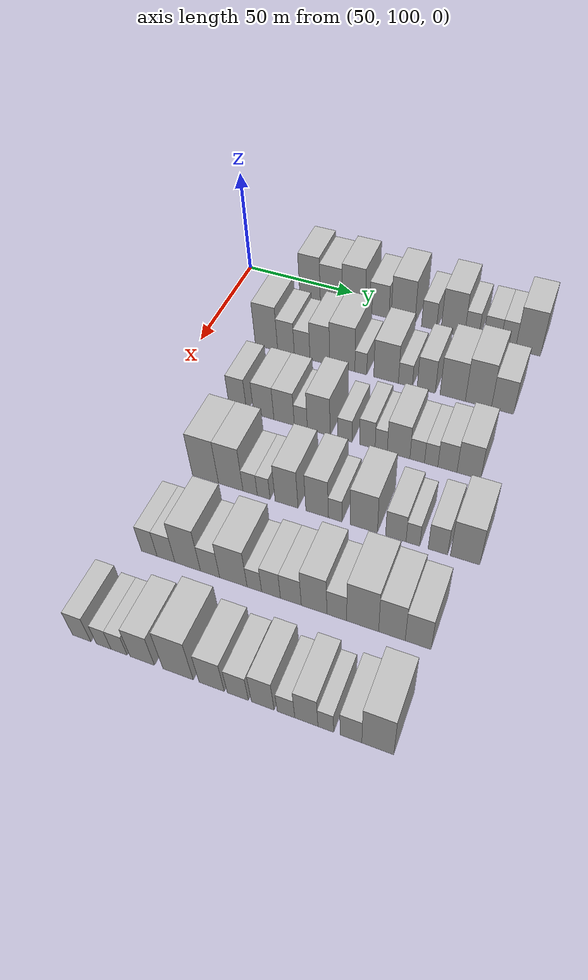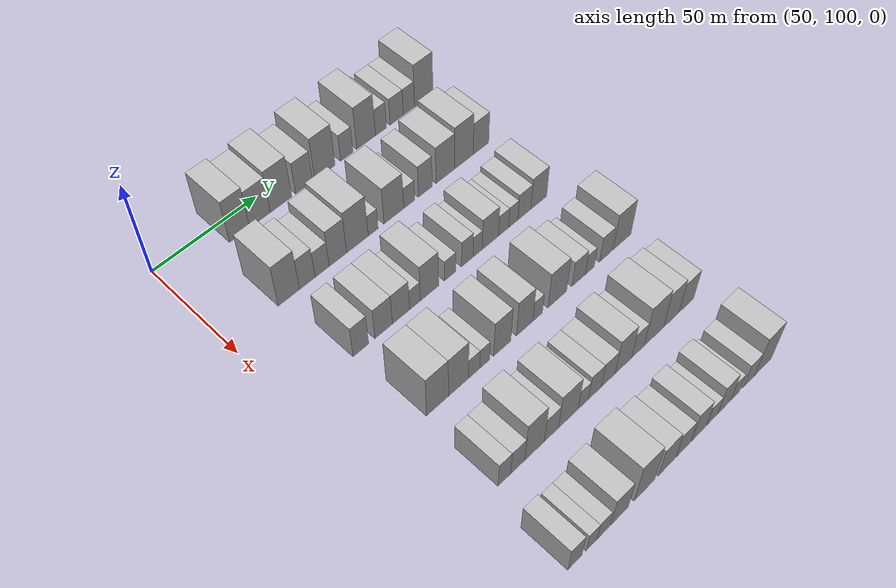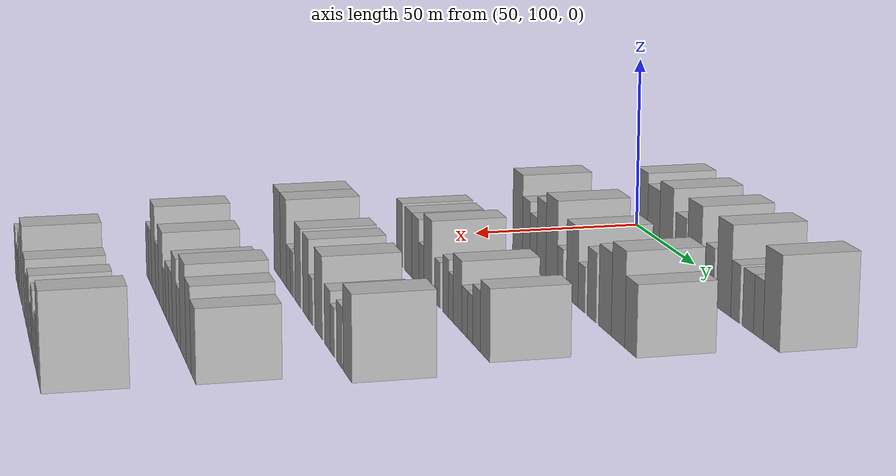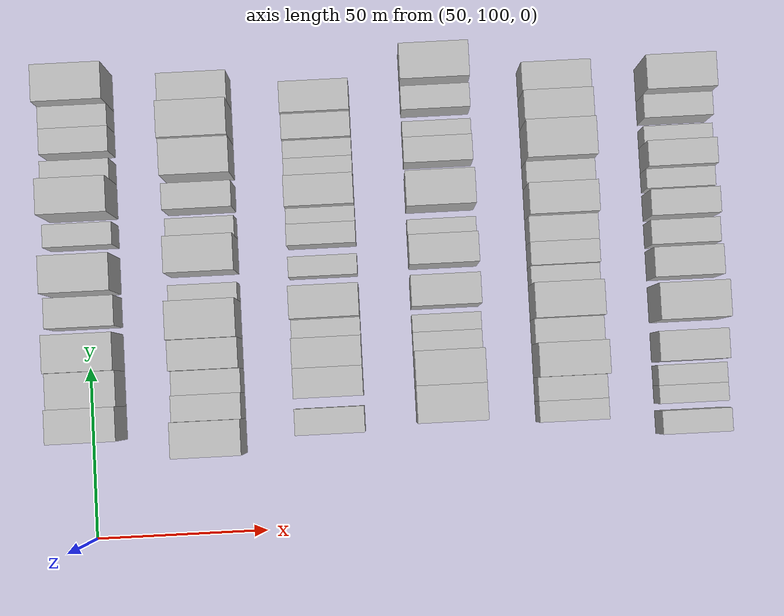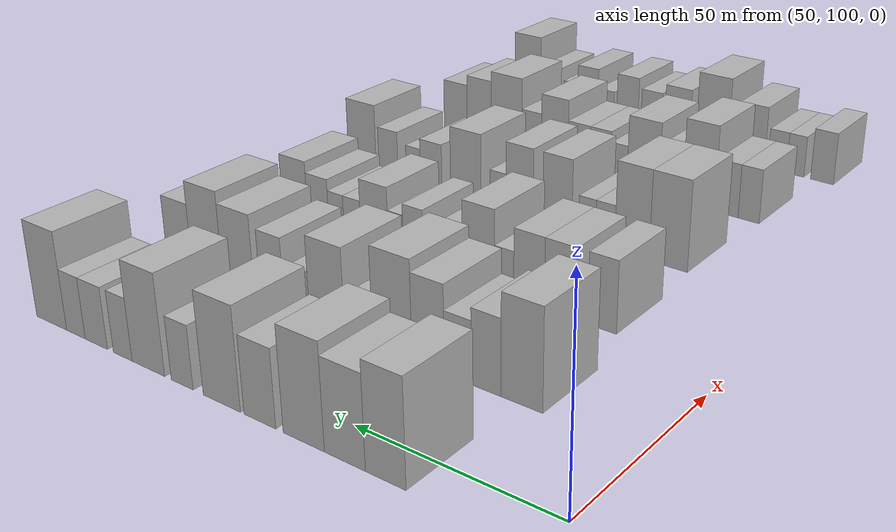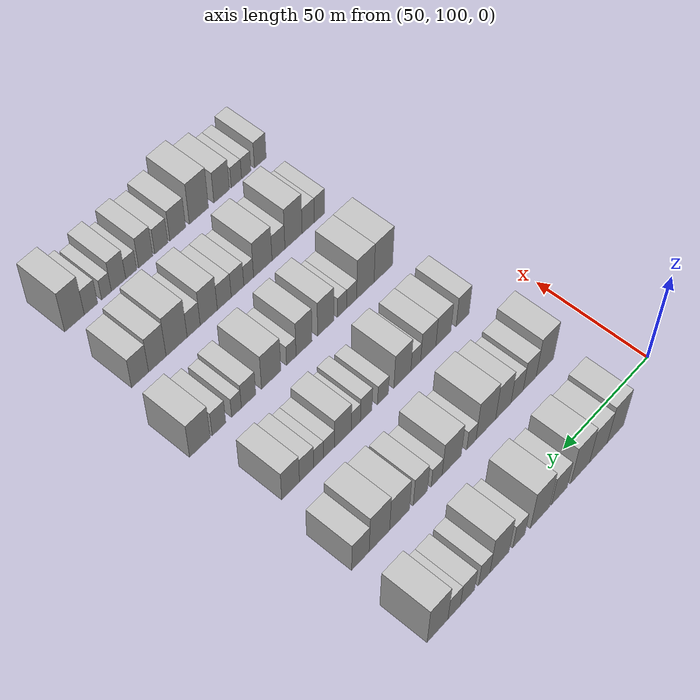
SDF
<sdf version="1.6">
 <world name="default">
  <model name="building_79">
   <static>1</static>
   <pose>50.0000 133.5332 0 0.000000 0.000000 0.000000</pose>
   <link name="link">
    <pose>0 0 12.00 0 0 0</pose>
    <collision name="collision"><geometry><box><size>20.0000 9.7597 24.0000</size></box></geometry></collision>
    <visual name="visual">
     <cast_shadows>0</cast_shadows>
     <geometry><box><size>20.0000 9.7597 24.0000</size></box></geometry>
     <material>
      <script>
       <uri>model://HANNAS_wall/materials/scripts</uri>
       <uri>model://HANNAS_wall/materials/textures</uri>
       <name>vrc/HANNAS_wall</name>
      </script>
     </material>
    </visual>
   </link>
  </model>
  <model name="building_80">
   <static>1</static>
   <pose>50.0000 143.5426 0 0.000000 0.000000 0.000000</pose>
   <link name="link">
    <pose>0 0 10.50 0 0 0</pose>
    <collision name="collision"><geometry><box><size>20.0000 10.2590 21.0000</size></box></geometry></collision>
    <visual name="visual">
     <cast_shadows>0</cast_shadows>
     <geometry><box><size>20.0000 10.2590 21.0000</size></box></geometry>
     <material>
      <script>
       <uri>model://HANNAS_wall/materials/scripts</uri>
       <uri>model://HANNAS_wall/materials/textures</uri>
       <name>vrc/HANNAS_wall</name>
      </script>
     </material>
    </visual>
   </link>
  </model>
  <model name="building_81">
   <static>1</static>
   <pose>50.0000 154.0727 0 0.000000 0.000000 0.000000</pose>
   <link name="link">
    <pose>0 0 12.00 0 0 0</pose>
    <collision name="collision"><geometry><box><size>20.0000 10.8012 24.0000</size></box></geometry></collision>
    <visual name="visual">
     <cast_shadows>0</cast_shadows>
     <geometry><box><size>20.0000 10.8012 24.0000</size></box></geometry>
     <material>
      <script>
       <uri>model://HANNAS_wall/materials/scripts</uri>
       <uri>model://HANNAS_wall/materials/textures</uri>
       <name>vrc/HANNAS_wall</name>
      </script>
     </material>
    </visual>
   </link>
  </model>
  <model name="building_82">
   <static>1</static>
   <pose>50.0000 165.8574 0 0.000000 0.000000 0.000000</pose>
   <link name="link">
    <pose>0 0 9.00 0 0 0</pose>
    <collision name="collision"><geometry><box><size>20.0000 8.7682 18.0000</size></box></geometry></collision>
    <visual name="visual">
     <cast_shadows>0</cast_shadows>
     <geometry><box><size>20.0000 8.7682 18.0000</size></box></geometry>
     <material>
      <script>
       <uri>model://HANNAS_wall/materials/scripts</uri>
       <uri>model://HANNAS_wall/materials/textures</uri>
       <name>vrc/HANNAS_wall</name>
      </script>
     </material>
    </visual>
   </link>
  </model>
  <model name="building_83">
   <static>1</static>
   <pose>50.0000 176.5997 0 0.000000 0.000000 0.000000</pose>
   <link name="link">
    <pose>0 0 12.00 0 0 0</pose>
    <collision name="collision"><geometry><box><size>20.0000 10.7165 24.0000</size></box></geometry></collision>
    <visual name="visual">
     <cast_shadows>0</cast_shadows>
     <geometry><box><size>20.0000 10.7165 24.0000</size></box></geometry>
     <material>
      <script>
       <uri>model://HANNAS_wall/materials/scripts</uri>
       <uri>model://HANNAS_wall/materials/textures</uri>
       <name>vrc/HANNAS_wall</name>
      </script>
     </material>
    </visual>
   </link>
  </model>
  <model name="building_84">
   <static>1</static>
   <pose>50.0000 188.2703 0 0.000000 0.000000 0.000000</pose>
   <link name="link">
    <pose>0 0 7.50 0 0 0</pose>
    <collision name="collision"><geometry><box><size>20.0000 6.6248 15.0000</size></box></geometry></collision>
    <visual name="visual">
     <cast_shadows>0</cast_shadows>
     <geometry><box><size>20.0000 6.6248 15.0000</size></box></geometry>
     <material>
      <script>
       <uri>model://HANNAS_wall/materials/scripts</uri>
       <uri>model://HANNAS_wall/materials/textures</uri>
       <name>vrc/HANNAS_wall</name>
      </script>
     </material>
    </visual>
   </link>
  </model>
  <model name="building_85">
   <static>1</static>
   <pose>50.0000 198.7261 0 0.000000 0.000000 0.000000</pose>
   <link name="link">
    <pose>0 0 12.00 0 0 0</pose>
    <collision name="collision"><geometry><box><size>20.0000 10.2867 24.0000</size></box></geometry></collision>
    <visual name="visual">
     <cast_shadows>0</cast_shadows>
     <geometry><box><size>20.0000 10.2867 24.0000</size></box></geometry>
     <material>
      <script>
       <uri>model://HANNAS_wall/materials/scripts</uri>
       <uri>model://HANNAS_wall/materials/textures</uri>
       <name>vrc/HANNAS_wall</name>
      </script>
     </material>
    </visual>
   </link>
  </model>
  <model name="building_86">
   <static>1</static>
   <pose>50.0000 206.9039 0 0.000000 0.000000 0.000000</pose>
   <link name="link">
    <pose>0 0 7.50 0 0 0</pose>
    <collision name="collision"><geometry><box><size>20.0000 6.0690 15.0000</size></box></geometry></collision>
    <visual name="visual">
     <cast_shadows>0</cast_shadows>
     <geometry><box><size>20.0000 6.0690 15.0000</size></box></geometry>
     <material>
      <script>
       <uri>model://HANNAS_wall/materials/scripts</uri>
       <uri>model://HANNAS_wall/materials/textures</uri>
       <name>vrc/HANNAS_wall</name>
      </script>
     </material>
    </visual>
   </link>
  </model>
  <model name="building_87">
   <static>1</static>
   <pose>50.0000 215.6608 0 0.000000 0.000000 0.000000</pose>
   <link name="link">
    <pose>0 0 7.50 0 0 0</pose>
    <collision name="collision"><geometry><box><size>20.0000 7.4447 15.0000</size></box></geometry></collision>
    <visual name="visual">
     <cast_shadows>0</cast_shadows>
     <geometry><box><size>20.0000 7.4447 15.0000</size></box></geometry>
     <material>
      <script>
       <uri>model://HANNAS_wall/materials/scripts</uri>
       <uri>model://HANNAS_wall/materials/textures</uri>
       <name>vrc/HANNAS_wall</name>
      </script>
     </material>
    </visual>
   </link>
  </model>
  <model name="building_88">
   <static>1</static>
   <pose>50.0000 222.6018 0 0.000000 0.000000 0.000000</pose>
   <link name="link">
    <pose>0 0 7.50 0 0 0</pose>
    <collision name="collision"><geometry><box><size>20.0000 6.4373 15.0000</size></box></geometry></collision>
    <visual name="visual">
     <cast_shadows>0</cast_shadows>
     <geometry><box><size>20.0000 6.4373 15.0000</size></box></geometry>
     <material>
      <script>
       <uri>model://HANNAS_wall/materials/scripts</uri>
       <uri>model://HANNAS_wall/materials/textures</uri>
       <name>vrc/HANNAS_wall</name>
      </script>
     </material>
    </visual>
   </link>
  </model>
  <model name="building_89">
   <static>1</static>
   <pose>50.0000 231.1291 0 0.000000 0.000000 0.000000</pose>
   <link name="link">
    <pose>0 0 12.00 0 0 0</pose>
    <collision name="collision"><geometry><box><size>20.0000 10.6174 24.0000</size></box></geometry></collision>
    <visual name="visual">
     <cast_shadows>0</cast_shadows>
     <geometry><box><size>20.0000 10.6174 24.0000</size></box></geometry>
     <material>
      <script>
       <uri>model://HANNAS_wall/materials/scripts</uri>
       <uri>model://HANNAS_wall/materials/textures</uri>
       <name>vrc/HANNAS_wall</name>
      </script>
     </material>
    </visual>
   </link>
  </model>
  <model name="building_202">
   <static>1</static>
   <pose>85.0000 128.0198 0 0.000000 0.000000 0.000000</pose>
   <link name="link">
    <pose>0 0 12.00 0 0 0</pose>
    <collision name="collision"><geometry><box><size>20.0000 10.1819 24.0000</size></box></geometry></collision>
    <visual name="visual">
     <cast_shadows>0</cast_shadows>
     <geometry><box><size>20.0000 10.1819 24.0000</size></box></geometry>
     <material>
      <script>
       <uri>model://HANNAS_wall/materials/scripts</uri>
       <uri>model://HANNAS_wall/materials/textures</uri>
       <name>vrc/HANNAS_wall</name>
      </script>
     </material>
    </visual>
   </link>
  </model>
  <model name="building_203">
   <static>1</static>
   <pose>85.0000 136.8718 0 0.000000 0.000000 0.000000</pose>
   <link name="link">
    <pose>0 0 9.00 0 0 0</pose>
    <collision name="collision"><geometry><box><size>20.0000 7.5220 18.0000</size></box></geometry></collision>
    <visual name="visual">
     <cast_shadows>0</cast_shadows>
     <geometry><box><size>20.0000 7.5220 18.0000</size></box></geometry>
     <material>
      <script>
       <uri>model://HANNAS_wall/materials/scripts</uri>
       <uri>model://HANNAS_wall/materials/textures</uri>
       <name>vrc/HANNAS_wall</name>
      </script>
     </material>
    </visual>
   </link>
  </model>
  <model name="building_204">
   <static>1</static>
   <pose>85.0000 144.1322 0 0.000000 0.000000 0.000000</pose>
   <link name="link">
    <pose>0 0 7.50 0 0 0</pose>
    <collision name="collision"><geometry><box><size>20.0000 6.9989 15.0000</size></box></geometry></collision>
    <visual name="visual">
     <cast_shadows>0</cast_shadows>
     <geometry><box><size>20.0000 6.9989 15.0000</size></box></geometry>
     <material>
      <script>
       <uri>model://HANNAS_wall/materials/scripts</uri>
       <uri>model://HANNAS_wall/materials/textures</uri>
       <name>vrc/HANNAS_wall</name>
      </script>
     </material>
    </visual>
   </link>
  </model>
  <model name="building_205">
   <static>1</static>
   <pose>85.0000 151.9988 0 0.000000 0.000000 0.000000</pose>
   <link name="link">
    <pose>0 0 10.50 0 0 0</pose>
    <collision name="collision"><geometry><box><size>20.0000 8.7342 21.0000</size></box></geometry></collision>
    <visual name="visual">
     <cast_shadows>0</cast_shadows>
     <geometry><box><size>20.0000 8.7342 21.0000</size></box></geometry>
     <material>
      <script>
       <uri>model://HANNAS_wall/materials/scripts</uri>
       <uri>model://HANNAS_wall/materials/textures</uri>
       <name>vrc/HANNAS_wall</name>
      </script>
     </material>
    </visual>
   </link>
  </model>
  <model name="building_206">
   <static>1</static>
   <pose>85.0000 161.8592 0 0.000000 0.000000 0.000000</pose>
   <link name="link">
    <pose>0 0 12.00 0 0 0</pose>
    <collision name="collision"><geometry><box><size>20.0000 10.9867 24.0000</size></box></geometry></collision>
    <visual name="visual">
     <cast_shadows>0</cast_shadows>
     <geometry><box><size>20.0000 10.9867 24.0000</size></box></geometry>
     <material>
      <script>
       <uri>model://HANNAS_wall/materials/scripts</uri>
       <uri>model://HANNAS_wall/materials/textures</uri>
       <name>vrc/HANNAS_wall</name>
      </script>
     </material>
    </visual>
   </link>
  </model>
  <model name="building_207">
   <static>1</static>
   <pose>85.0000 169.9157 0 0.000000 0.000000 0.000000</pose>
   <link name="link">
    <pose>0 0 6.00 0 0 0</pose>
    <collision name="collision"><geometry><box><size>20.0000 5.1262 12.0000</size></box></geometry></collision>
    <visual name="visual">
     <cast_shadows>0</cast_shadows>
     <geometry><box><size>20.0000 5.1262 12.0000</size></box></geometry>
     <material>
      <script>
       <uri>model://HANNAS_wall/materials/scripts</uri>
       <uri>model://HANNAS_wall/materials/textures</uri>
       <name>vrc/HANNAS_wall</name>
      </script>
     </material>
    </visual>
   </link>
  </model>
  <model name="building_208">
   <static>1</static>
   <pose>85.0000 180.7234 0 0.000000 0.000000 0.000000</pose>
   <link name="link">
    <pose>0 0 10.50 0 0 0</pose>
    <collision name="collision"><geometry><box><size>20.0000 10.4892 21.0000</size></box></geometry></collision>
    <visual name="visual">
     <cast_shadows>0</cast_shadows>
     <geometry><box><size>20.0000 10.4892 21.0000</size></box></geometry>
     <material>
      <script>
       <uri>model://HANNAS_wall/materials/scripts</uri>
       <uri>model://HANNAS_wall/materials/textures</uri>
       <name>vrc/HANNAS_wall</name>
      </script>
     </material>
    </visual>
   </link>
  </model>
  <model name="building_209">
   <static>1</static>
   <pose>85.0000 188.9053 0 0.000000 0.000000 0.000000</pose>
   <link name="link">
    <pose>0 0 6.00 0 0 0</pose>
    <collision name="collision"><geometry><box><size>20.0000 5.8746 12.0000</size></box></geometry></collision>
    <visual name="visual">
     <cast_shadows>0</cast_shadows>
     <geometry><box><size>20.0000 5.8746 12.0000</size></box></geometry>
     <material>
      <script>
       <uri>model://HANNAS_wall/materials/scripts</uri>
       <uri>model://HANNAS_wall/materials/textures</uri>
       <name>vrc/HANNAS_wall</name>
      </script>
     </material>
    </visual>
   </link>
  </model>
  <model name="building_210">
   <static>1</static>
   <pose>85.0000 197.6183 0 0.000000 0.000000 0.000000</pose>
   <link name="link">
    <pose>0 0 9.00 0 0 0</pose>
    <collision name="collision"><geometry><box><size>20.0000 7.5513 18.0000</size></box></geometry></collision>
    <visual name="visual">
     <cast_shadows>0</cast_shadows>
     <geometry><box><size>20.0000 7.5513 18.0000</size></box></geometry>
     <material>
      <script>
       <uri>model://HANNAS_wall/materials/scripts</uri>
       <uri>model://HANNAS_wall/materials/textures</uri>
       <name>vrc/HANNAS_wall</name>
      </script>
     </material>
    </visual>
   </link>
  </model>
  <model name="building_211">
   <static>1</static>
   <pose>85.0000 208.5854 0 0.000000 0.000000 0.000000</pose>
   <link name="link">
    <pose>0 0 10.50 0 0 0</pose>
    <collision name="collision"><geometry><box><size>20.0000 10.3828 21.0000</size></box></geometry></collision>
    <visual name="visual">
     <cast_shadows>0</cast_shadows>
     <geometry><box><size>20.0000 10.3828 21.0000</size></box></geometry>
     <material>
      <script>
       <uri>model://HANNAS_wall/materials/scripts</uri>
       <uri>model://HANNAS_wall/materials/textures</uri>
       <name>vrc/HANNAS_wall</name>
      </script>
     </material>
    </visual>
   </link>
  </model>
  <model name="building_212">
   <static>1</static>
   <pose>85.0000 219.0468 0 0.000000 0.000000 0.000000</pose>
   <link name="link">
    <pose>0 0 12.00 0 0 0</pose>
    <collision name="collision"><geometry><box><size>20.0000 10.5402 24.0000</size></box></geometry></collision>
    <visual name="visual">
     <cast_shadows>0</cast_shadows>
     <geometry><box><size>20.0000 10.5402 24.0000</size></box></geometry>
     <material>
      <script>
       <uri>model://HANNAS_wall/materials/scripts</uri>
       <uri>model://HANNAS_wall/materials/textures</uri>
       <name>vrc/HANNAS_wall</name>
      </script>
     </material>
    </visual>
   </link>
  </model>
  <model name="building_213">
   <static>1</static>
   <pose>85.0000 228.7790 0 0.000000 0.000000 0.000000</pose>
   <link name="link">
    <pose>0 0 9.00 0 0 0</pose>
    <collision name="collision"><geometry><box><size>20.0000 8.9241 18.0000</size></box></geometry></collision>
    <visual name="visual">
     <cast_shadows>0</cast_shadows>
     <geometry><box><size>20.0000 8.9241 18.0000</size></box></geometry>
     <material>
      <script>
       <uri>model://HANNAS_wall/materials/scripts</uri>
       <uri>model://HANNAS_wall/materials/textures</uri>
       <name>vrc/HANNAS_wall</name>
      </script>
     </material>
    </visual>
   </link>
  </model>
  <model name="building_329">
   <static>1</static>
   <pose>120.0000 131.2723 0 0.000000 0.000000 0.000000</pose>
   <link name="link">
    <pose>0 0 9.00 0 0 0</pose>
    <collision name="collision"><geometry><box><size>20.0000 7.4970 18.0000</size></box></geometry></collision>
    <visual name="visual">
     <cast_shadows>0</cast_shadows>
     <geometry><box><size>20.0000 7.4970 18.0000</size></box></geometry>
     <material>
      <script>
       <uri>model://HANNAS_wall/materials/scripts</uri>
       <uri>model://HANNAS_wall/materials/textures</uri>
       <name>vrc/HANNAS_wall</name>
      </script>
     </material>
    </visual>
   </link>
  </model>
  <model name="building_330">
   <static>1</static>
   <pose>120.0000 142.3194 0 0.000000 0.000000 0.000000</pose>
   <link name="link">
    <pose>0 0 9.00 0 0 0</pose>
    <collision name="collision"><geometry><box><size>20.0000 8.5974 18.0000</size></box></geometry></collision>
    <visual name="visual">
     <cast_shadows>0</cast_shadows>
     <geometry><box><size>20.0000 8.5974 18.0000</size></box></geometry>
     <material>
      <script>
       <uri>model://HANNAS_wall/materials/scripts</uri>
       <uri>model://HANNAS_wall/materials/textures</uri>
       <name>vrc/HANNAS_wall</name>
      </script>
     </material>
    </visual>
   </link>
  </model>
  <model name="building_331">
   <static>1</static>
   <pose>120.0000 150.9036 0 0.000000 0.000000 0.000000</pose>
   <link name="link">
    <pose>0 0 9.00 0 0 0</pose>
    <collision name="collision"><geometry><box><size>20.0000 8.5711 18.0000</size></box></geometry></collision>
    <visual name="visual">
     <cast_shadows>0</cast_shadows>
     <geometry><box><size>20.0000 8.5711 18.0000</size></box></geometry>
     <material>
      <script>
       <uri>model://HANNAS_wall/materials/scripts</uri>
       <uri>model://HANNAS_wall/materials/textures</uri>
       <name>vrc/HANNAS_wall</name>
      </script>
     </material>
    </visual>
   </link>
  </model>
  <model name="building_332">
   <static>1</static>
   <pose>120.0000 157.9092 0 0.000000 0.000000 0.000000</pose>
   <link name="link">
    <pose>0 0 6.00 0 0 0</pose>
    <collision name="collision"><geometry><box><size>20.0000 5.4401 12.0000</size></box></geometry></collision>
    <visual name="visual">
     <cast_shadows>0</cast_shadows>
     <geometry><box><size>20.0000 5.4401 12.0000</size></box></geometry>
     <material>
      <script>
       <uri>model://HANNAS_wall/materials/scripts</uri>
       <uri>model://HANNAS_wall/materials/textures</uri>
       <name>vrc/HANNAS_wall</name>
      </script>
     </material>
    </visual>
   </link>
  </model>
  <model name="building_333">
   <static>1</static>
   <pose>120.0000 165.3287 0 0.000000 0.000000 0.000000</pose>
   <link name="link">
    <pose>0 0 10.50 0 0 0</pose>
    <collision name="collision"><geometry><box><size>20.0000 9.3988 21.0000</size></box></geometry></collision>
    <visual name="visual">
     <cast_shadows>0</cast_shadows>
     <geometry><box><size>20.0000 9.3988 21.0000</size></box></geometry>
     <material>
      <script>
       <uri>model://HANNAS_wall/materials/scripts</uri>
       <uri>model://HANNAS_wall/materials/textures</uri>
       <name>vrc/HANNAS_wall</name>
      </script>
     </material>
    </visual>
   </link>
  </model>
  <model name="building_334">
   <static>1</static>
   <pose>120.0000 175.9874 0 0.000000 0.000000 0.000000</pose>
   <link name="link">
    <pose>0 0 6.00 0 0 0</pose>
    <collision name="collision"><geometry><box><size>20.0000 5.9186 12.0000</size></box></geometry></collision>
    <visual name="visual">
     <cast_shadows>0</cast_shadows>
     <geometry><box><size>20.0000 5.9186 12.0000</size></box></geometry>
     <material>
      <script>
       <uri>model://HANNAS_wall/materials/scripts</uri>
       <uri>model://HANNAS_wall/materials/textures</uri>
       <name>vrc/HANNAS_wall</name>
      </script>
     </material>
    </visual>
   </link>
  </model>
  <model name="building_335">
   <static>1</static>
   <pose>120.0000 185.0506 0 0.000000 0.000000 0.000000</pose>
   <link name="link">
    <pose>0 0 7.50 0 0 0</pose>
    <collision name="collision"><geometry><box><size>20.0000 6.2077 15.0000</size></box></geometry></collision>
    <visual name="visual">
     <cast_shadows>0</cast_shadows>
     <geometry><box><size>20.0000 6.2077 15.0000</size></box></geometry>
     <material>
      <script>
       <uri>model://HANNAS_wall/materials/scripts</uri>
       <uri>model://HANNAS_wall/materials/textures</uri>
       <name>vrc/HANNAS_wall</name>
      </script>
     </material>
    </visual>
   </link>
  </model>
  <model name="building_336">
   <static>1</static>
   <pose>120.0000 190.5601 0 0.000000 0.000000 0.000000</pose>
   <link name="link">
    <pose>0 0 6.00 0 0 0</pose>
    <collision name="collision"><geometry><box><size>20.0000 4.8113 12.0000</size></box></geometry></collision>
    <visual name="visual">
     <cast_shadows>0</cast_shadows>
     <geometry><box><size>20.0000 4.8113 12.0000</size></box></geometry>
     <material>
      <script>
       <uri>model://HANNAS_wall/materials/scripts</uri>
       <uri>model://HANNAS_wall/materials/textures</uri>
       <name>vrc/HANNAS_wall</name>
      </script>
     </material>
    </visual>
   </link>
  </model>
  <model name="building_337">
   <static>1</static>
   <pose>120.0000 197.4260 0 0.000000 0.000000 0.000000</pose>
   <link name="link">
    <pose>0 0 9.00 0 0 0</pose>
    <collision name="collision"><geometry><box><size>20.0000 8.9205 18.0000</size></box></geometry></collision>
    <visual name="visual">
     <cast_shadows>0</cast_shadows>
     <geometry><box><size>20.0000 8.9205 18.0000</size></box></geometry>
     <material>
      <script>
       <uri>model://HANNAS_wall/materials/scripts</uri>
       <uri>model://HANNAS_wall/materials/textures</uri>
       <name>vrc/HANNAS_wall</name>
      </script>
     </material>
    </visual>
   </link>
  </model>
  <model name="building_338">
   <static>1</static>
   <pose>120.0000 204.7276 0 0.000000 0.000000 0.000000</pose>
   <link name="link">
    <pose>0 0 6.00 0 0 0</pose>
    <collision name="collision"><geometry><box><size>20.0000 5.6827 12.0000</size></box></geometry></collision>
    <visual name="visual">
     <cast_shadows>0</cast_shadows>
     <geometry><box><size>20.0000 5.6827 12.0000</size></box></geometry>
     <material>
      <script>
       <uri>model://HANNAS_wall/materials/scripts</uri>
       <uri>model://HANNAS_wall/materials/textures</uri>
       <name>vrc/HANNAS_wall</name>
      </script>
     </material>
    </visual>
   </link>
  </model>
  <model name="building_339">
   <static>1</static>
   <pose>120.0000 210.1458 0 0.000000 0.000000 0.000000</pose>
   <link name="link">
    <pose>0 0 6.00 0 0 0</pose>
    <collision name="collision"><geometry><box><size>20.0000 5.1538 12.0000</size></box></geometry></collision>
    <visual name="visual">
     <cast_shadows>0</cast_shadows>
     <geometry><box><size>20.0000 5.1538 12.0000</size></box></geometry>
     <material>
      <script>
       <uri>model://HANNAS_wall/materials/scripts</uri>
       <uri>model://HANNAS_wall/materials/textures</uri>
       <name>vrc/HANNAS_wall</name>
      </script>
     </material>
    </visual>
   </link>
  </model>
  <model name="building_340">
   <static>1</static>
   <pose>120.0000 216.3875 0 0.000000 0.000000 0.000000</pose>
   <link name="link">
    <pose>0 0 7.50 0 0 0</pose>
    <collision name="collision"><geometry><box><size>20.0000 7.3296 15.0000</size></box></geometry></collision>
    <visual name="visual">
     <cast_shadows>0</cast_shadows>
     <geometry><box><size>20.0000 7.3296 15.0000</size></box></geometry>
     <material>
      <script>
       <uri>model://HANNAS_wall/materials/scripts</uri>
       <uri>model://HANNAS_wall/materials/textures</uri>
       <name>vrc/HANNAS_wall</name>
      </script>
     </material>
    </visual>
   </link>
  </model>
  <model name="building_341">
   <static>1</static>
   <pose>120.0000 224.5504 0 0.000000 0.000000 0.000000</pose>
   <link name="link">
    <pose>0 0 9.00 0 0 0</pose>
    <collision name="collision"><geometry><box><size>20.0000 8.9963 18.0000</size></box></geometry></collision>
    <visual name="visual">
     <cast_shadows>0</cast_shadows>
     <geometry><box><size>20.0000 8.9963 18.0000</size></box></geometry>
     <material>
      <script>
       <uri>model://HANNAS_wall/materials/scripts</uri>
       <uri>model://HANNAS_wall/materials/textures</uri>
       <name>vrc/HANNAS_wall</name>
      </script>
     </material>
    </visual>
   </link>
  </model>
  <model name="building_456">
   <static>1</static>
   <pose>155.0000 134.5626 0 0.000000 0.000000 0.000000</pose>
   <link name="link">
    <pose>0 0 12.00 0 0 0</pose>
    <collision name="collision"><geometry><box><size>20.0000 10.5808 24.0000</size></box></geometry></collision>
    <visual name="visual">
     <cast_shadows>0</cast_shadows>
     <geometry><box><size>20.0000 10.5808 24.0000</size></box></geometry>
     <material>
      <script>
       <uri>model://HANNAS_wall/materials/scripts</uri>
       <uri>model://HANNAS_wall/materials/textures</uri>
       <name>vrc/HANNAS_wall</name>
      </script>
     </material>
    </visual>
   </link>
  </model>
  <model name="building_457">
   <static>1</static>
   <pose>155.0000 144.7566 0 0.000000 0.000000 0.000000</pose>
   <link name="link">
    <pose>0 0 12.00 0 0 0</pose>
    <collision name="collision"><geometry><box><size>20.0000 9.8072 24.0000</size></box></geometry></collision>
    <visual name="visual">
     <cast_shadows>0</cast_shadows>
     <geometry><box><size>20.0000 9.8072 24.0000</size></box></geometry>
     <material>
      <script>
       <uri>model://HANNAS_wall/materials/scripts</uri>
       <uri>model://HANNAS_wall/materials/textures</uri>
       <name>vrc/HANNAS_wall</name>
      </script>
     </material>
    </visual>
   </link>
  </model>
  <model name="building_458">
   <static>1</static>
   <pose>155.0000 152.4972 0 0.000000 0.000000 0.000000</pose>
   <link name="link">
    <pose>0 0 6.00 0 0 0</pose>
    <collision name="collision"><geometry><box><size>20.0000 5.6741 12.0000</size></box></geometry></collision>
    <visual name="visual">
     <cast_shadows>0</cast_shadows>
     <geometry><box><size>20.0000 5.6741 12.0000</size></box></geometry>
     <material>
      <script>
       <uri>model://HANNAS_wall/materials/scripts</uri>
       <uri>model://HANNAS_wall/materials/textures</uri>
       <name>vrc/HANNAS_wall</name>
      </script>
     </material>
    </visual>
   </link>
  </model>
  <model name="building_459">
   <static>1</static>
   <pose>155.0000 157.8466 0 0.000000 0.000000 0.000000</pose>
   <link name="link">
    <pose>0 0 6.00 0 0 0</pose>
    <collision name="collision"><geometry><box><size>20.0000 5.0246 12.0000</size></box></geometry></collision>
    <visual name="visual">
     <cast_shadows>0</cast_shadows>
     <geometry><box><size>20.0000 5.0246 12.0000</size></box></geometry>
     <material>
      <script>
       <uri>model://HANNAS_wall/materials/scripts</uri>
       <uri>model://HANNAS_wall/materials/textures</uri>
       <name>vrc/HANNAS_wall</name>
      </script>
     </material>
    </visual>
   </link>
  </model>
  <model name="building_460">
   <static>1</static>
   <pose>155.0000 166.8009 0 0.000000 0.000000 0.000000</pose>
   <link name="link">
    <pose>0 0 10.50 0 0 0</pose>
    <collision name="collision"><geometry><box><size>20.0000 8.8842 21.0000</size></box></geometry></collision>
    <visual name="visual">
     <cast_shadows>0</cast_shadows>
     <geometry><box><size>20.0000 8.8842 21.0000</size></box></geometry>
     <material>
      <script>
       <uri>model://HANNAS_wall/materials/scripts</uri>
       <uri>model://HANNAS_wall/materials/textures</uri>
       <name>vrc/HANNAS_wall</name>
      </script>
     </material>
    </visual>
   </link>
  </model>
  <model name="building_461">
   <static>1</static>
   <pose>155.0000 178.5416 0 0.000000 0.000000 0.000000</pose>
   <link name="link">
    <pose>0 0 10.50 0 0 0</pose>
    <collision name="collision"><geometry><box><size>20.0000 8.5972 21.0000</size></box></geometry></collision>
    <visual name="visual">
     <cast_shadows>0</cast_shadows>
     <geometry><box><size>20.0000 8.5972 21.0000</size></box></geometry>
     <material>
      <script>
       <uri>model://HANNAS_wall/materials/scripts</uri>
       <uri>model://HANNAS_wall/materials/textures</uri>
       <name>vrc/HANNAS_wall</name>
      </script>
     </material>
    </visual>
   </link>
  </model>
  <model name="building_462">
   <static>1</static>
   <pose>155.0000 185.3907 0 0.000000 0.000000 0.000000</pose>
   <link name="link">
    <pose>0 0 6.00 0 0 0</pose>
    <collision name="collision"><geometry><box><size>20.0000 5.1011 12.0000</size></box></geometry></collision>
    <visual name="visual">
     <cast_shadows>0</cast_shadows>
     <geometry><box><size>20.0000 5.1011 12.0000</size></box></geometry>
     <material>
      <script>
       <uri>model://HANNAS_wall/materials/scripts</uri>
       <uri>model://HANNAS_wall/materials/textures</uri>
       <name>vrc/HANNAS_wall</name>
      </script>
     </material>
    </visual>
   </link>
  </model>
  <model name="building_463">
   <static>1</static>
   <pose>155.0000 196.0281 0 0.000000 0.000000 0.000000</pose>
   <link name="link">
    <pose>0 0 10.50 0 0 0</pose>
    <collision name="collision"><geometry><box><size>20.0000 10.1736 21.0000</size></box></geometry></collision>
    <visual name="visual">
     <cast_shadows>0</cast_shadows>
     <geometry><box><size>20.0000 10.1736 21.0000</size></box></geometry>
     <material>
      <script>
       <uri>model://HANNAS_wall/materials/scripts</uri>
       <uri>model://HANNAS_wall/materials/textures</uri>
       <name>vrc/HANNAS_wall</name>
      </script>
     </material>
    </visual>
   </link>
  </model>
  <model name="building_464">
   <static>1</static>
   <pose>155.0000 207.8383 0 0.000000 0.000000 0.000000</pose>
   <link name="link">
    <pose>0 0 7.50 0 0 0</pose>
    <collision name="collision"><geometry><box><size>20.0000 7.4468 15.0000</size></box></geometry></collision>
    <visual name="visual">
     <cast_shadows>0</cast_shadows>
     <geometry><box><size>20.0000 7.4468 15.0000</size></box></geometry>
     <material>
      <script>
       <uri>model://HANNAS_wall/materials/scripts</uri>
       <uri>model://HANNAS_wall/materials/textures</uri>
       <name>vrc/HANNAS_wall</name>
      </script>
     </material>
    </visual>
   </link>
  </model>
  <model name="building_465">
   <static>1</static>
   <pose>155.0000 214.0499 0 0.000000 0.000000 0.000000</pose>
   <link name="link">
    <pose>0 0 6.00 0 0 0</pose>
    <collision name="collision"><geometry><box><size>20.0000 4.9764 12.0000</size></box></geometry></collision>
    <visual name="visual">
     <cast_shadows>0</cast_shadows>
     <geometry><box><size>20.0000 4.9764 12.0000</size></box></geometry>
     <material>
      <script>
       <uri>model://HANNAS_wall/materials/scripts</uri>
       <uri>model://HANNAS_wall/materials/textures</uri>
       <name>vrc/HANNAS_wall</name>
      </script>
     </material>
    </visual>
   </link>
  </model>
  <model name="building_466">
   <static>1</static>
   <pose>155.0000 222.9997 0 0.000000 0.000000 0.000000</pose>
   <link name="link">
    <pose>0 0 7.50 0 0 0</pose>
    <collision name="collision"><geometry><box><size>20.0000 6.9233 15.0000</size></box></geometry></collision>
    <visual name="visual">
     <cast_shadows>0</cast_shadows>
     <geometry><box><size>20.0000 6.9233 15.0000</size></box></geometry>
     <material>
      <script>
       <uri>model://HANNAS_wall/materials/scripts</uri>
       <uri>model://HANNAS_wall/materials/textures</uri>
       <name>vrc/HANNAS_wall</name>
      </script>
     </material>
    </visual>
   </link>
  </model>
  <model name="building_467">
   <static>1</static>
   <pose>155.0000 232.6159 0 0.000000 0.000000 0.000000</pose>
   <link name="link">
    <pose>0 0 10.50 0 0 0</pose>
    <collision name="collision"><geometry><box><size>20.0000 10.3091 21.0000</size></box></geometry></collision>
    <visual name="visual">
     <cast_shadows>0</cast_shadows>
     <geometry><box><size>20.0000 10.3091 21.0000</size></box></geometry>
     <material>
      <script>
       <uri>model://HANNAS_wall/materials/scripts</uri>
       <uri>model://HANNAS_wall/materials/textures</uri>
       <name>vrc/HANNAS_wall</name>
      </script>
     </material>
    </visual>
   </link>
  </model>
  <model name="building_573">
   <static>1</static>
   <pose>190.0000 130.6455 0 0.000000 0.000000 0.000000</pose>
   <link name="link">
    <pose>0 0 7.50 0 0 0</pose>
    <collision name="collision"><geometry><box><size>20.0000 6.0448 15.0000</size></box></geometry></collision>
    <visual name="visual">
     <cast_shadows>0</cast_shadows>
     <geometry><box><size>20.0000 6.0448 15.0000</size></box></geometry>
     <material>
      <script>
       <uri>model://HANNAS_wall/materials/scripts</uri>
       <uri>model://HANNAS_wall/materials/textures</uri>
       <name>vrc/HANNAS_wall</name>
      </script>
     </material>
    </visual>
   </link>
  </model>
  <model name="building_574">
   <static>1</static>
   <pose>190.0000 137.0972 0 0.000000 0.000000 0.000000</pose>
   <link name="link">
    <pose>0 0 7.50 0 0 0</pose>
    <collision name="collision"><geometry><box><size>20.0000 6.8585 15.0000</size></box></geometry></collision>
    <visual name="visual">
     <cast_shadows>0</cast_shadows>
     <geometry><box><size>20.0000 6.8585 15.0000</size></box></geometry>
     <material>
      <script>
       <uri>model://HANNAS_wall/materials/scripts</uri>
       <uri>model://HANNAS_wall/materials/textures</uri>
       <name>vrc/HANNAS_wall</name>
      </script>
     </material>
    </visual>
   </link>
  </model>
  <model name="building_575">
   <static>1</static>
   <pose>190.0000 145.3419 0 0.000000 0.000000 0.000000</pose>
   <link name="link">
    <pose>0 0 12.00 0 0 0</pose>
    <collision name="collision"><geometry><box><size>20.0000 9.6309 24.0000</size></box></geometry></collision>
    <visual name="visual">
     <cast_shadows>0</cast_shadows>
     <geometry><box><size>20.0000 9.6309 24.0000</size></box></geometry>
     <material>
      <script>
       <uri>model://HANNAS_wall/materials/scripts</uri>
       <uri>model://HANNAS_wall/materials/textures</uri>
       <name>vrc/HANNAS_wall</name>
      </script>
     </material>
    </visual>
   </link>
  </model>
  <model name="building_576">
   <static>1</static>
   <pose>190.0000 153.7354 0 0.000000 0.000000 0.000000</pose>
   <link name="link">
    <pose>0 0 7.50 0 0 0</pose>
    <collision name="collision"><geometry><box><size>20.0000 7.1562 15.0000</size></box></geometry></collision>
    <visual name="visual">
     <cast_shadows>0</cast_shadows>
     <geometry><box><size>20.0000 7.1562 15.0000</size></box></geometry>
     <material>
      <script>
       <uri>model://HANNAS_wall/materials/scripts</uri>
       <uri>model://HANNAS_wall/materials/textures</uri>
       <name>vrc/HANNAS_wall</name>
      </script>
     </material>
    </visual>
   </link>
  </model>
  <model name="building_577">
   <static>1</static>
   <pose>190.0000 162.3591 0 0.000000 0.000000 0.000000</pose>
   <link name="link">
    <pose>0 0 10.50 0 0 0</pose>
    <collision name="collision"><geometry><box><size>20.0000 10.0911 21.0000</size></box></geometry></collision>
    <visual name="visual">
     <cast_shadows>0</cast_shadows>
     <geometry><box><size>20.0000 10.0911 21.0000</size></box></geometry>
     <material>
      <script>
       <uri>model://HANNAS_wall/materials/scripts</uri>
       <uri>model://HANNAS_wall/materials/textures</uri>
       <name>vrc/HANNAS_wall</name>
      </script>
     </material>
    </visual>
   </link>
  </model>
  <model name="building_578">
   <static>1</static>
   <pose>190.0000 170.0505 0 0.000000 0.000000 0.000000</pose>
   <link name="link">
    <pose>0 0 6.00 0 0 0</pose>
    <collision name="collision"><geometry><box><size>20.0000 5.2916 12.0000</size></box></geometry></collision>
    <visual name="visual">
     <cast_shadows>0</cast_shadows>
     <geometry><box><size>20.0000 5.2916 12.0000</size></box></geometry>
     <material>
      <script>
       <uri>model://HANNAS_wall/materials/scripts</uri>
       <uri>model://HANNAS_wall/materials/textures</uri>
       <name>vrc/HANNAS_wall</name>
      </script>
     </material>
    </visual>
   </link>
  </model>
  <model name="building_579">
   <static>1</static>
   <pose>190.0000 176.0727 0 0.000000 0.000000 0.000000</pose>
   <link name="link">
    <pose>0 0 7.50 0 0 0</pose>
    <collision name="collision"><geometry><box><size>20.0000 6.7528 15.0000</size></box></geometry></collision>
    <visual name="visual">
     <cast_shadows>0</cast_shadows>
     <geometry><box><size>20.0000 6.7528 15.0000</size></box></geometry>
     <material>
      <script>
       <uri>model://HANNAS_wall/materials/scripts</uri>
       <uri>model://HANNAS_wall/materials/textures</uri>
       <name>vrc/HANNAS_wall</name>
      </script>
     </material>
    </visual>
   </link>
  </model>
  <model name="building_580">
   <static>1</static>
   <pose>190.0000 183.1550 0 0.000000 0.000000 0.000000</pose>
   <link name="link">
    <pose>0 0 7.50 0 0 0</pose>
    <collision name="collision"><geometry><box><size>20.0000 7.4117 15.0000</size></box></geometry></collision>
    <visual name="visual">
     <cast_shadows>0</cast_shadows>
     <geometry><box><size>20.0000 7.4117 15.0000</size></box></geometry>
     <material>
      <script>
       <uri>model://HANNAS_wall/materials/scripts</uri>
       <uri>model://HANNAS_wall/materials/textures</uri>
       <name>vrc/HANNAS_wall</name>
      </script>
     </material>
    </visual>
   </link>
  </model>
  <model name="building_581">
   <static>1</static>
   <pose>190.0000 191.3647 0 0.000000 0.000000 0.000000</pose>
   <link name="link">
    <pose>0 0 10.50 0 0 0</pose>
    <collision name="collision"><geometry><box><size>20.0000 9.0077 21.0000</size></box></geometry></collision>
    <visual name="visual">
     <cast_shadows>0</cast_shadows>
     <geometry><box><size>20.0000 9.0077 21.0000</size></box></geometry>
     <material>
      <script>
       <uri>model://HANNAS_wall/materials/scripts</uri>
       <uri>model://HANNAS_wall/materials/textures</uri>
       <name>vrc/HANNAS_wall</name>
      </script>
     </material>
    </visual>
   </link>
  </model>
  <model name="building_582">
   <static>1</static>
   <pose>190.0000 199.2891 0 0.000000 0.000000 0.000000</pose>
   <link name="link">
    <pose>0 0 7.50 0 0 0</pose>
    <collision name="collision"><geometry><box><size>20.0000 6.8412 15.0000</size></box></geometry></collision>
    <visual name="visual">
     <cast_shadows>0</cast_shadows>
     <geometry><box><size>20.0000 6.8412 15.0000</size></box></geometry>
     <material>
      <script>
       <uri>model://HANNAS_wall/materials/scripts</uri>
       <uri>model://HANNAS_wall/materials/textures</uri>
       <name>vrc/HANNAS_wall</name>
      </script>
     </material>
    </visual>
   </link>
  </model>
  <model name="building_583">
   <static>1</static>
   <pose>190.0000 208.1339 0 0.000000 0.000000 0.000000</pose>
   <link name="link">
    <pose>0 0 12.00 0 0 0</pose>
    <collision name="collision"><geometry><box><size>20.0000 10.8485 24.0000</size></box></geometry></collision>
    <visual name="visual">
     <cast_shadows>0</cast_shadows>
     <geometry><box><size>20.0000 10.8485 24.0000</size></box></geometry>
     <material>
      <script>
       <uri>model://HANNAS_wall/materials/scripts</uri>
       <uri>model://HANNAS_wall/materials/textures</uri>
       <name>vrc/HANNAS_wall</name>
      </script>
     </material>
    </visual>
   </link>
  </model>
  <model name="building_584">
   <static>1</static>
   <pose>190.0000 218.0064 0 0.000000 0.000000 0.000000</pose>
   <link name="link">
    <pose>0 0 10.50 0 0 0</pose>
    <collision name="collision"><geometry><box><size>20.0000 8.8965 21.0000</size></box></geometry></collision>
    <visual name="visual">
     <cast_shadows>0</cast_shadows>
     <geometry><box><size>20.0000 8.8965 21.0000</size></box></geometry>
     <material>
      <script>
       <uri>model://HANNAS_wall/materials/scripts</uri>
       <uri>model://HANNAS_wall/materials/textures</uri>
       <name>vrc/HANNAS_wall</name>
      </script>
     </material>
    </visual>
   </link>
  </model>
  <model name="building_585">
   <static>1</static>
   <pose>190.0000 226.7540 0 0.000000 0.000000 0.000000</pose>
   <link name="link">
    <pose>0 0 9.00 0 0 0</pose>
    <collision name="collision"><geometry><box><size>20.0000 8.5987 18.0000</size></box></geometry></collision>
    <visual name="visual">
     <cast_shadows>0</cast_shadows>
     <geometry><box><size>20.0000 8.5987 18.0000</size></box></geometry>
     <material>
      <script>
       <uri>model://HANNAS_wall/materials/scripts</uri>
       <uri>model://HANNAS_wall/materials/textures</uri>
       <name>vrc/HANNAS_wall</name>
      </script>
     </material>
    </visual>
   </link>
  </model>
  <model name="building_689">
   <static>1</static>
   <pose>225.0000 125.7490 0 0.000000 0.000000 0.000000</pose>
   <link name="link">
    <pose>0 0 7.50 0 0 0</pose>
    <collision name="collision"><geometry><box><size>20.0000 6.7303 15.0000</size></box></geometry></collision>
    <visual name="visual">
     <cast_shadows>0</cast_shadows>
     <geometry><box><size>20.0000 6.7303 15.0000</size></box></geometry>
     <material>
      <script>
       <uri>model://HANNAS_wall/materials/scripts</uri>
       <uri>model://HANNAS_wall/materials/textures</uri>
       <name>vrc/HANNAS_wall</name>
      </script>
     </material>
    </visual>
   </link>
  </model>
  <model name="building_690">
   <static>1</static>
   <pose>225.0000 133.7504 0 0.000000 0.000000 0.000000</pose>
   <link name="link">
    <pose>0 0 6.00 0 0 0</pose>
    <collision name="collision"><geometry><box><size>20.0000 5.2725 12.0000</size></box></geometry></collision>
    <visual name="visual">
     <cast_shadows>0</cast_shadows>
     <geometry><box><size>20.0000 5.2725 12.0000</size></box></geometry>
     <material>
      <script>
       <uri>model://HANNAS_wall/materials/scripts</uri>
       <uri>model://HANNAS_wall/materials/textures</uri>
       <name>vrc/HANNAS_wall</name>
      </script>
     </material>
    </visual>
   </link>
  </model>
  <model name="building_691">
   <static>1</static>
   <pose>225.0000 139.3021 0 0.000000 0.000000 0.000000</pose>
   <link name="link">
    <pose>0 0 6.00 0 0 0</pose>
    <collision name="collision"><geometry><box><size>20.0000 5.8308 12.0000</size></box></geometry></collision>
    <visual name="visual">
     <cast_shadows>0</cast_shadows>
     <geometry><box><size>20.0000 5.8308 12.0000</size></box></geometry>
     <material>
      <script>
       <uri>model://HANNAS_wall/materials/scripts</uri>
       <uri>model://HANNAS_wall/materials/textures</uri>
       <name>vrc/HANNAS_wall</name>
      </script>
     </material>
    </visual>
   </link>
  </model>
  <model name="building_692">
   <static>1</static>
   <pose>225.0000 147.5353 0 0.000000 0.000000 0.000000</pose>
   <link name="link">
    <pose>0 0 9.00 0 0 0</pose>
    <collision name="collision"><geometry><box><size>20.0000 8.6354 18.0000</size></box></geometry></collision>
    <visual name="visual">
     <cast_shadows>0</cast_shadows>
     <geometry><box><size>20.0000 8.6354 18.0000</size></box></geometry>
     <material>
      <script>
       <uri>model://HANNAS_wall/materials/scripts</uri>
       <uri>model://HANNAS_wall/materials/textures</uri>
       <name>vrc/HANNAS_wall</name>
      </script>
     </material>
    </visual>
   </link>
  </model>
  <model name="building_693">
   <static>1</static>
   <pose>225.0000 160.0794 0 0.000000 0.000000 0.000000</pose>
   <link name="link">
    <pose>0 0 12.00 0 0 0</pose>
    <collision name="collision"><geometry><box><size>20.0000 10.4529 24.0000</size></box></geometry></collision>
    <visual name="visual">
     <cast_shadows>0</cast_shadows>
     <geometry><box><size>20.0000 10.4529 24.0000</size></box></geometry>
     <material>
      <script>
       <uri>model://HANNAS_wall/materials/scripts</uri>
       <uri>model://HANNAS_wall/materials/textures</uri>
       <name>vrc/HANNAS_wall</name>
      </script>
     </material>
    </visual>
   </link>
  </model>
  <model name="building_694">
   <static>1</static>
   <pose>225.0000 171.5914 0 0.000000 0.000000 0.000000</pose>
   <link name="link">
    <pose>0 0 9.00 0 0 0</pose>
    <collision name="collision"><geometry><box><size>20.0000 8.5710 18.0000</size></box></geometry></collision>
    <visual name="visual">
     <cast_shadows>0</cast_shadows>
     <geometry><box><size>20.0000 8.5710 18.0000</size></box></geometry>
     <material>
      <script>
       <uri>model://HANNAS_wall/materials/scripts</uri>
       <uri>model://HANNAS_wall/materials/textures</uri>
       <name>vrc/HANNAS_wall</name>
      </script>
     </material>
    </visual>
   </link>
  </model>
  <model name="building_695">
   <static>1</static>
   <pose>225.0000 180.4091 0 0.000000 0.000000 0.000000</pose>
   <link name="link">
    <pose>0 0 7.50 0 0 0</pose>
    <collision name="collision"><geometry><box><size>20.0000 7.0643 15.0000</size></box></geometry></collision>
    <visual name="visual">
     <cast_shadows>0</cast_shadows>
     <geometry><box><size>20.0000 7.0643 15.0000</size></box></geometry>
     <material>
      <script>
       <uri>model://HANNAS_wall/materials/scripts</uri>
       <uri>model://HANNAS_wall/materials/textures</uri>
       <name>vrc/HANNAS_wall</name>
      </script>
     </material>
    </visual>
   </link>
  </model>
  <model name="building_696">
   <static>1</static>
   <pose>225.0000 188.6784 0 0.000000 0.000000 0.000000</pose>
   <link name="link">
    <pose>0 0 9.00 0 0 0</pose>
    <collision name="collision"><geometry><box><size>20.0000 7.4743 18.0000</size></box></geometry></collision>
    <visual name="visual">
     <cast_shadows>0</cast_shadows>
     <geometry><box><size>20.0000 7.4743 18.0000</size></box></geometry>
     <material>
      <script>
       <uri>model://HANNAS_wall/materials/scripts</uri>
       <uri>model://HANNAS_wall/materials/textures</uri>
       <name>vrc/HANNAS_wall</name>
      </script>
     </material>
    </visual>
   </link>
  </model>
  <model name="building_697">
   <static>1</static>
   <pose>225.0000 196.2719 0 0.000000 0.000000 0.000000</pose>
   <link name="link">
    <pose>0 0 6.00 0 0 0</pose>
    <collision name="collision"><geometry><box><size>20.0000 5.7127 12.0000</size></box></geometry></collision>
    <visual name="visual">
     <cast_shadows>0</cast_shadows>
     <geometry><box><size>20.0000 5.7127 12.0000</size></box></geometry>
     <material>
      <script>
       <uri>model://HANNAS_wall/materials/scripts</uri>
       <uri>model://HANNAS_wall/materials/textures</uri>
       <name>vrc/HANNAS_wall</name>
      </script>
     </material>
    </visual>
   </link>
  </model>
  <model name="building_698">
   <static>1</static>
   <pose>225.0000 202.8381 0 0.000000 0.000000 0.000000</pose>
   <link name="link">
    <pose>0 0 9.00 0 0 0</pose>
    <collision name="collision"><geometry><box><size>20.0000 7.4198 18.0000</size></box></geometry></collision>
    <visual name="visual">
     <cast_shadows>0</cast_shadows>
     <geometry><box><size>20.0000 7.4198 18.0000</size></box></geometry>
     <material>
      <script>
       <uri>model://HANNAS_wall/materials/scripts</uri>
       <uri>model://HANNAS_wall/materials/textures</uri>
       <name>vrc/HANNAS_wall</name>
      </script>
     </material>
    </visual>
   </link>
  </model>
  <model name="building_699">
   <static>1</static>
   <pose>225.0000 209.0531 0 0.000000 0.000000 0.000000</pose>
   <link name="link">
    <pose>0 0 6.00 0 0 0</pose>
    <collision name="collision"><geometry><box><size>20.0000 5.0101 12.0000</size></box></geometry></collision>
    <visual name="visual">
     <cast_shadows>0</cast_shadows>
     <geometry><box><size>20.0000 5.0101 12.0000</size></box></geometry>
     <material>
      <script>
       <uri>model://HANNAS_wall/materials/scripts</uri>
       <uri>model://HANNAS_wall/materials/textures</uri>
       <name>vrc/HANNAS_wall</name>
      </script>
     </material>
    </visual>
   </link>
  </model>
  <model name="building_700">
   <static>1</static>
   <pose>225.0000 216.9627 0 0.000000 0.000000 0.000000</pose>
   <link name="link">
    <pose>0 0 7.50 0 0 0</pose>
    <collision name="collision"><geometry><box><size>20.0000 6.8092 15.0000</size></box></geometry></collision>
    <visual name="visual">
     <cast_shadows>0</cast_shadows>
     <geometry><box><size>20.0000 6.8092 15.0000</size></box></geometry>
     <material>
      <script>
       <uri>model://HANNAS_wall/materials/scripts</uri>
       <uri>model://HANNAS_wall/materials/textures</uri>
       <name>vrc/HANNAS_wall</name>
      </script>
     </material>
    </visual>
   </link>
  </model>
  <model name="building_701">
   <static>1</static>
   <pose>225.0000 225.2972 0 0.000000 0.000000 0.000000</pose>
   <link name="link">
    <pose>0 0 12.00 0 0 0</pose>
    <collision name="collision"><geometry><box><size>20.0000 9.8597 24.0000</size></box></geometry></collision>
    <visual name="visual">
     <cast_shadows>0</cast_shadows>
     <geometry><box><size>20.0000 9.8597 24.0000</size></box></geometry>
     <material>
      <script>
       <uri>model://HANNAS_wall/materials/scripts</uri>
       <uri>model://HANNAS_wall/materials/textures</uri>
       <name>vrc/HANNAS_wall</name>
      </script>
     </material>
    </visual>
   </link>
  </model>
 </world>
</sdf>
